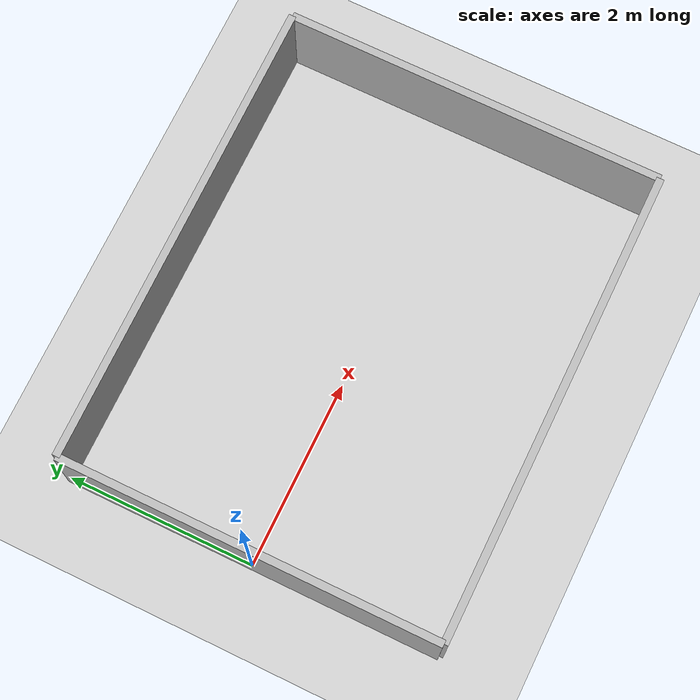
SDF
<?xml version="1.0" ?>
<sdf version="1.6">
  <world name="cleanbot_home_demo">
    <include>
      <uri>model://sun</uri>
    </include>
    <include>
      <uri>model://ground_plane</uri>
    </include>
    <model name="simple_room_walls">
      <static>true</static>
      <link name="walls">
        <collision name="wall_1"><pose>2.5 2.0 0.5 0 0 0</pose><geometry><box><size>5.0 0.08 1.0</size></box></geometry></collision>
        <visual name="wall_1_v"><pose>2.5 2.0 0.5 0 0 0</pose><geometry><box><size>5.0 0.08 1.0</size></box></geometry></visual>
        <collision name="wall_2"><pose>2.5 -2.0 0.5 0 0 0</pose><geometry><box><size>5.0 0.08 1.0</size></box></geometry></collision>
        <visual name="wall_2_v"><pose>2.5 -2.0 0.5 0 0 0</pose><geometry><box><size>5.0 0.08 1.0</size></box></geometry></visual>
        <collision name="wall_3"><pose>0.0 0.0 0.5 0 0 0</pose><geometry><box><size>0.08 4.0 1.0</size></box></geometry></collision>
        <visual name="wall_3_v"><pose>0.0 0.0 0.5 0 0 0</pose><geometry><box><size>0.08 4.0 1.0</size></box></geometry></visual>
        <collision name="wall_4"><pose>5.0 0.0 0.5 0 0 0</pose><geometry><box><size>0.08 4.0 1.0</size></box></geometry></collision>
        <visual name="wall_4_v"><pose>5.0 0.0 0.5 0 0 0</pose><geometry><box><size>0.08 4.0 1.0</size></box></geometry></visual>
      </link>
    </model>
  </world>
</sdf>
